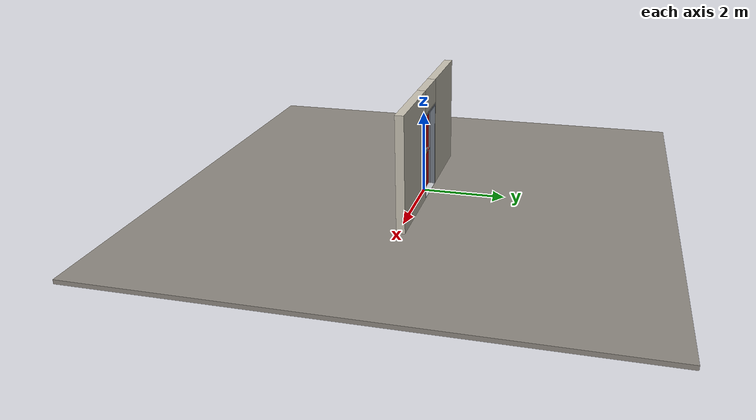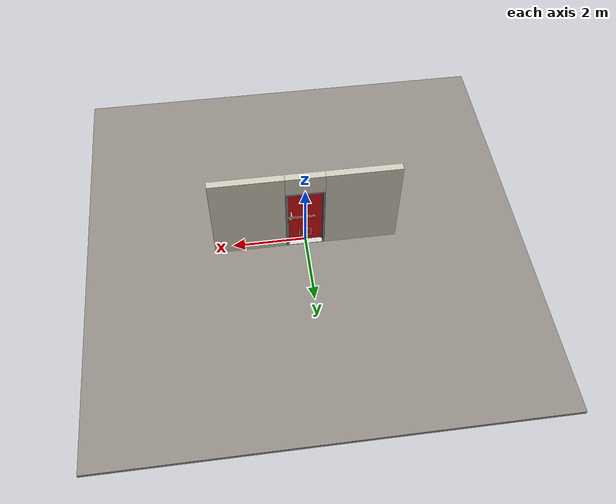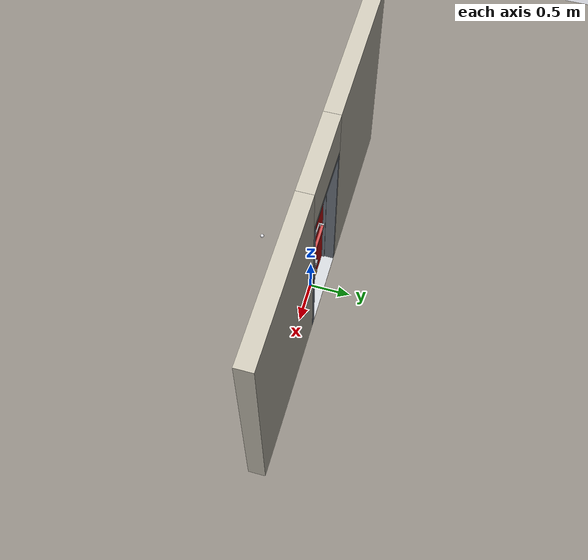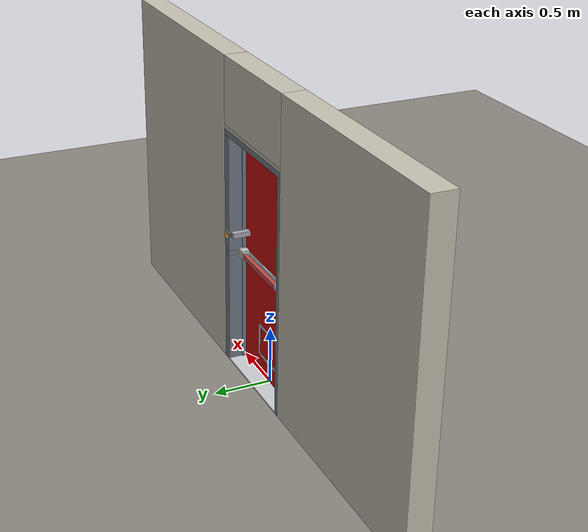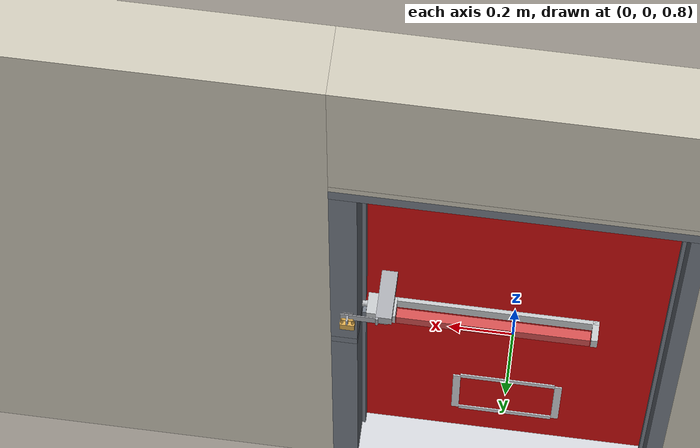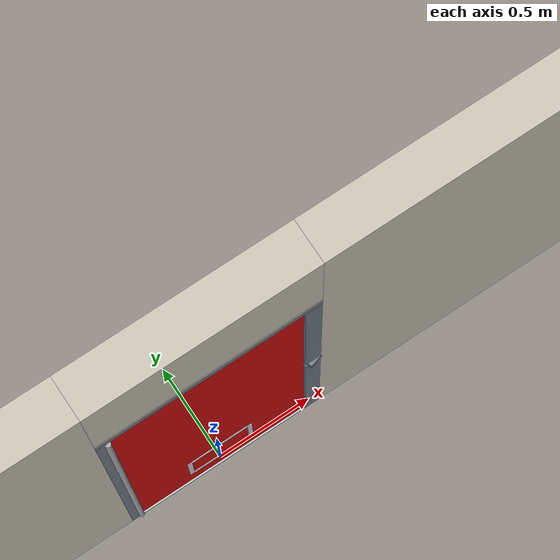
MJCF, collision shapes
<?xml version="1.0" ?>
<mujoco model="db0789_swing_single_full">
  <compiler angle="radian" meshdir="../../hardware" texturedir="../../textures" autolimits="true" inertiafromgeom="false"/>
  <option timestep="0.002" integrator="implicitfast" cone="elliptic" impratio="10" noslip_iterations="3">
    <flag multiccd="enable"/>
  </option>
  <size memory="16M"/>
  <default>
    <geom condim="4" solref="0.005 1" solimp="0.95 0.99 0.001"/>
    <joint solreflimit="0.005 1" solimplimit="0.95 0.99 0.001"/>
    <tendon solreflimit="0.005 1"/>
    <equality solref="0.002 1"/>
  </default>
  <visual>
    <headlight ambient="0.4 0.4 0.4" diffuse="0.7 0.7 0.7" specular="0.2 0.2 0.2"/>
    <quality shadowsize="4096"/>
    <map znear="0.01" zfar="60"/>
  </visual>
  <asset>
    <mesh name="touchbar_pad_2729a067b4" file="touchbar_pad_2729a067b4.obj"/>
    <material name="mat_floor" rgba="0.55 0.53 0.5 1" specular="0.2" shininess="0.15" reflectance="0"/>
    <material name="mat_wall" rgba="0.78 0.76 0.7 1" specular="0.2" shininess="0.1" reflectance="0"/>
    <material name="mat_leaf" rgba="0.8 0.05 0.05 1" specular="0.23" shininess="0.52" reflectance="0.02"/>
    <material name="mat_leaf_louver" rgba="0.68 0.043 0.043 1" specular="0.2" shininess="0.4" reflectance="0"/>
    <material name="mat_hinge" rgba="0.65 0.66 0.68 1" specular="0.74" shininess="0.5" reflectance="0.36"/>
    <material name="mat_op_stainless" rgba="0.75 0.76 0.77 1" specular="0.8" shininess="0.65" reflectance="0.4"/>
    <material name="mat_bolt" rgba="0.75 0.76 0.77 1" specular="0.8" shininess="0.65" reflectance="0.4"/>
    <material name="mat_op_steel_galvanized" rgba="0.65 0.66 0.68 1" specular="0.74" shininess="0.5" reflectance="0.36"/>
    <material name="mat_padlock" rgba="0.85 0.66 0.3 1" specular="0.8" shininess="0.75" reflectance="0.4"/>
    <material name="mat_frame" rgba="0.45 0.48 0.52 1" specular="0.32" shininess="0.6" reflectance="0.08"/>
    <material name="mat_seal" rgba="0.1 0.1 0.1 1" specular="0.2" shininess="0.1" reflectance="0"/>
    <material name="mat_threshold" rgba="0.8 0.81 0.83 1" specular="0.8" shininess="0.6" reflectance="0.4"/>
    <material name="mat_vent" rgba="0.8 0.81 0.83 1" specular="0.8" shininess="0.6" reflectance="0.4"/>
    <material name="mat_stop" rgba="0.9 0.9 0.92 1" specular="0.8" shininess="0.9" reflectance="0.4"/>
    <texture name="skybox" type="skybox" builtin="gradient" rgb1="0.6 0.7 0.85" rgb2="0.9 0.92 0.95" width="256" height="256"/>
  </asset>
  <worldbody>
    <light name="sun" pos="1.5 -2.5 4" dir="-0.3 0.5 -0.8" directional="true" diffuse="0.8 0.8 0.8" specular="0.3 0.3 0.3" castshadow="true"/>
    <light name="fill" pos="-1.5 2.5 3" dir="0.3 -0.5 -0.7" directional="true" diffuse="0.35 0.35 0.4" castshadow="false"/>
    <camera name="robot_view" pos="0 -2.471187 1.734312" xyaxes="1 0 0 0 0.26963 0.962964" fovy="52"/>
    <camera name="far_view" pos="0 2.613187 1.734312" xyaxes="-1 0 0 0 -0.26963 0.962964" fovy="52"/>
    <camera name="iso" pos="1.932062 -2.064437 2.141063" xyaxes="0.741536 0.670913 0 -0.242917 0.268487 0.932151" fovy="46"/>
    <camera name="detail_handle" pos="0.6705 -0.615 1.496" xyaxes="0.97561 0.219512 0 -0.070934 0.315262 0.94635" fovy="38"/>
    <geom name="floor" type="box" size="6 6 0.05" pos="0 0 -0.05" material="mat_floor" group="0" contype="1" conaffinity="1" friction="0.8 0.005 0.0001" density="2400"/>
    <geom name="wall_left" type="box" size="0.99475 0.1 1.35" pos="-1.50525 0.071 1.35" material="mat_wall" group="0" contype="1" conaffinity="1" friction="0.6 0.005 0.0001" density="800"/>
    <geom name="wall_right" type="box" size="0.97975 0.1 1.35" pos="1.52025 0.071 1.35" material="mat_wall" group="0" contype="1" conaffinity="1" friction="0.6 0.005 0.0001" density="800"/>
    <geom name="wall_header" type="box" size="0.5255 0.1 0.2875" pos="0.015 0.071 2.4125" material="mat_wall" group="0" contype="1" conaffinity="1" friction="0.6 0.005 0.0001" density="800"/>
    <geom name="leaf_staple_leg_n" type="box" size="0.003 0.0025 0.013" pos="0.4885 0.184 1.2285" quat="0.707107 -0.707107 0 0" material="mat_op_steel_galvanized" group="0" contype="1" conaffinity="1" friction="0.6 0.005 0.0001" density="7800"/>
    <geom name="leaf_staple_leg_p" type="box" size="0.003 0.0025 0.013" pos="0.4885 0.184 1.2035" quat="0.707107 -0.707107 0 0" material="mat_op_steel_galvanized" group="0" contype="1" conaffinity="1" friction="0.6 0.005 0.0001" density="7800"/>
    <geom name="leaf_staple_bridge" type="box" size="0.003 0.015 0.0025" pos="0.4885 0.1945 1.216" quat="0.707107 -0.707107 0 0" material="mat_op_steel_galvanized" group="0" contype="1" conaffinity="1" friction="0.6 0.005 0.0001" density="7800"/>
    <geom name="leaf_staple_base" type="box" size="0.016 0.021 0.001" pos="0.4885 0.172 1.216" quat="0.707107 -0.707107 0 0" material="mat_op_steel_galvanized" group="1" contype="0" conaffinity="0" density="7800"/>
    <geom name="leaf_padlock_shackle" type="capsule" size="0.004 0.016" pos="0.4885 0.186 1.216" quat="0.707107 0 0.707107 0" material="mat_padlock" group="1" contype="0" conaffinity="0" density="7850"/>
    <geom name="leaf_padlock_leg_a" type="capsule" size="0.004 0.012" pos="0.4725 0.186 1.204" quat="0 1 0 0" material="mat_padlock" group="1" contype="0" conaffinity="0" density="7850"/>
    <geom name="leaf_padlock_leg_b" type="capsule" size="0.004 0.012" pos="0.5045 0.186 1.204" quat="0 1 0 0" material="mat_padlock" group="1" contype="0" conaffinity="0" density="7850"/>
    <geom name="leaf_padlock_body" type="box" size="0.022 0.018 0.008" pos="0.4885 0.186 1.174" quat="0.707107 -0.707107 0 0" material="mat_padlock" group="0" contype="1" conaffinity="1" friction="0.6 0.005 0.0001" density="7850"/>
    <geom name="jamb_hinge" type="box" size="0.025 0.1 1.0225" pos="-0.4855 0.071 1.0225" material="mat_frame" group="0" contype="1" conaffinity="1" friction="0.6 0.005 0.0001" density="300"/>
    <geom name="strike_1016_wall_n" type="box" size="0.04 0.058 0.02" pos="0.5005 0.113 1.016" material="mat_frame" group="0" contype="1" conaffinity="1" friction="0.6 0.005 0.0001" density="300"/>
    <geom name="strike_1016_wall_p" type="box" size="0.04 0.008 0.02" pos="0.5005 0.025 1.016" material="mat_frame" group="0" contype="1" conaffinity="1" friction="0.6 0.005 0.0001" density="300"/>
    <geom name="strike_1016_ramp" type="box" size="0.04 0.034482 0.02" pos="0.508781 -0.0044 1.016" quat="0.989198 0 0 0.146587" material="mat_frame" group="0" contype="1" conaffinity="1" friction="0.12 0.005 0.0001" density="300"/>
    <geom name="strike_1016_back" type="box" size="0.0285 0.011 0.02" pos="0.512 0.044 1.016" material="mat_frame" group="0" contype="1" conaffinity="1" friction="0.6 0.005 0.0001" density="300"/>
    <geom name="jamb_strike_0" type="box" size="0.04 0.1 0.498" pos="0.5005 0.071 0.498" material="mat_frame" group="0" contype="1" conaffinity="1" friction="0.6 0.005 0.0001" density="300"/>
    <geom name="jamb_strike_1" type="box" size="0.04 0.1 0.5045" pos="0.5005 0.071 1.5405" material="mat_frame" group="0" contype="1" conaffinity="1" friction="0.6 0.005 0.0001" density="300"/>
    <geom name="jamb_head" type="box" size="0.5255 0.1 0.025" pos="0.015 0.071 2.07" material="mat_frame" group="0" contype="1" conaffinity="1" friction="0.6 0.005 0.0001" density="300"/>
    <geom name="head_stud" type="box" size="0.5255 0.1 0.015" pos="0.015 0.071 2.11" material="mat_wall" group="0" contype="1" conaffinity="1" friction="0.6 0.005 0.0001" density="500"/>
    <geom name="stop_hinge" type="box" size="0.0055 0.016 1.0225" pos="-0.455 0.0385 1.0225" material="mat_frame" group="0" contype="1" conaffinity="1" friction="0.6 0.005 0.0001" density="300"/>
    <geom name="stop_strike" type="box" size="0.0055 0.016 0.48425" pos="0.455 0.0385 0.48425" material="mat_frame" group="0" contype="1" conaffinity="1" friction="0.6 0.005 0.0001" density="300"/>
    <geom name="stop_strike_1" type="box" size="0.0055 0.016 0.49075" pos="0.455 0.0385 1.55425" material="mat_frame" group="0" contype="1" conaffinity="1" friction="0.6 0.005 0.0001" density="300"/>
    <geom name="stop_head" type="box" size="0.4605 0.016 0.0055" pos="0 0.0385 2.0395" material="mat_frame" group="0" contype="1" conaffinity="1" friction="0.6 0.005 0.0001" density="300"/>
    <geom name="seal_hinge" type="box" size="0.004 0.002 1.0225" pos="-0.4575 0.024 1.0225" material="mat_seal" group="1" contype="0" conaffinity="0" density="1100"/>
    <geom name="seal_strike" type="box" size="0.004 0.002 0.48425" pos="0.4575 0.024 0.48425" material="mat_seal" group="1" contype="0" conaffinity="0" density="1100"/>
    <geom name="seal_strike_1" type="box" size="0.004 0.002 0.49075" pos="0.4575 0.024 1.55425" material="mat_seal" group="1" contype="0" conaffinity="0" density="1100"/>
    <geom name="seal_head" type="box" size="0.4405 0.002 0.008" pos="0 0.024 2.033" material="mat_seal" group="1" contype="0" conaffinity="0" density="1100"/>
    <geom name="threshold" type="box" size="0.5105 0.1 0.0065" pos="0 0.071 0.0065" material="mat_threshold" group="0" contype="1" conaffinity="1" friction="0.5 0.005 0.0001" density="2700"/>
    <geom name="floor_stop_dome" type="sphere" size="0.025" pos="-0.545135 -0.801201 0" material="mat_stop" group="0" contype="1" conaffinity="1" friction="0.6 0.005 0.0001" density="7000"/>
    <site name="approach_point" pos="0 -1.5 0" quat="1 0 0 0" size="0.05" rgba="0.2 0.9 0.2 0.5" group="4"/>
    <site name="goal_point" pos="0 1.5 0" quat="1 0 0 0" size="0.05" rgba="0.2 0.9 0.2 0.5" group="4"/>
    <site name="door_plane_center" pos="0 0 1.0225" quat="1 0 0 0" size="0.02" rgba="0.2 0.9 0.2 0.5" group="4"/>
    <body name="leaf" pos="-0.4605 0 0">
      <inertial pos="0.460372 0.003904 1.024502" mass="62.592046" quat="0.495464 0.509657 -0.489204 0.505415" diaginertia="4.997626913 20.032649231 24.953960184"/>
      <joint name="leaf_hinge" type="hinge" axis="0 0 -1" pos="0.003 -0.029 0" limited="true" range="0 0.0015" solreflimit="0.02 1" damping="0.30611" frictionloss="3.282966" armature="0.02"/>
      <geom name="leaf_slab" type="box" size="0.457 0.022 1.012" pos="0.46 0 1.029" material="mat_leaf" group="0" contype="1" conaffinity="1" friction="0.4 0.005 0.0001" density="1"/>
      <geom name="leaf_louver_0" type="box" size="0.2285 0.002 0.02625" pos="0.46 0 0.292" quat="0.953717 0.300706 0 0" material="mat_leaf_louver" group="1" contype="0" conaffinity="0" density="1"/>
      <geom name="leaf_louver_1" type="box" size="0.2285 0.002 0.02625" pos="0.46 0 0.342" quat="0.953717 0.300706 0 0" material="mat_leaf_louver" group="1" contype="0" conaffinity="0" density="1"/>
      <geom name="leaf_louver_2" type="box" size="0.2285 0.002 0.02625" pos="0.46 0 0.392" quat="0.953717 0.300706 0 0" material="mat_leaf_louver" group="1" contype="0" conaffinity="0" density="1"/>
      <geom name="leaf_louver_3" type="box" size="0.2285 0.002 0.02625" pos="0.46 0 0.442" quat="0.953717 0.300706 0 0" material="mat_leaf_louver" group="1" contype="0" conaffinity="0" density="1"/>
      <geom name="leaf_louver_4" type="box" size="0.2285 0.002 0.02625" pos="0.46 0 0.492" quat="0.953717 0.300706 0 0" material="mat_leaf_louver" group="1" contype="0" conaffinity="0" density="1"/>
      <geom name="leaf_louver_5" type="box" size="0.2285 0.002 0.02625" pos="0.46 0 0.542" quat="0.953717 0.300706 0 0" material="mat_leaf_louver" group="1" contype="0" conaffinity="0" density="1"/>
      <geom name="leaf_louver_6" type="box" size="0.2285 0.002 0.02625" pos="0.46 0 0.592" quat="0.953717 0.300706 0 0" material="mat_leaf_louver" group="1" contype="0" conaffinity="0" density="1"/>
      <geom name="leaf_louver_7" type="box" size="0.2285 0.002 0.02625" pos="0.46 0 0.642" quat="0.953717 0.300706 0 0" material="mat_leaf_louver" group="1" contype="0" conaffinity="0" density="1"/>
      <geom name="leaf_louver_8" type="box" size="0.2285 0.002 0.02625" pos="0.46 0 0.692" quat="0.953717 0.300706 0 0" material="mat_leaf_louver" group="1" contype="0" conaffinity="0" density="1"/>
      <geom name="hinge_continuous" type="cylinder" size="0.0136 1.002" pos="0.003 -0.029 1.029" material="mat_hinge" group="1" contype="0" conaffinity="0" density="2700"/>
      <geom name="leaf_exit_device_rail" type="box" size="0.31705 0.006 0.025" pos="0.51995 0.028 1.016" material="mat_op_stainless" group="0" contype="1" conaffinity="1" friction="0.6 0.005 0.0001" density="3000"/>
      <geom name="leaf_exit_device_rail_end_n" type="box" size="0.01 0.0325 0.025" pos="0.2129 0.0545 1.016" material="mat_op_stainless" group="0" contype="1" conaffinity="1" friction="0.6 0.005 0.0001" density="3000"/>
      <geom name="leaf_exit_device_rail_end_p" type="box" size="0.01 0.0325 0.025" pos="0.827 0.0545 1.016" material="mat_op_stainless" group="0" contype="1" conaffinity="1" friction="0.6 0.005 0.0001" density="3000"/>
      <geom name="leaf_exit_device_case" type="box" size="0.034 0.034125 0.0375" pos="0.871 0.056125 1.016" material="mat_op_stainless" group="0" contype="1" conaffinity="1" friction="0.6 0.005 0.0001" density="3000"/>
      <geom name="leaf_hasp_plate" type="box" size="0.024 0.0215 0.0765" pos="0.842 0.0985 1.216" quat="0.707107 -0.707107 0 0" material="mat_op_steel_galvanized" group="1" contype="0" conaffinity="0" density="7800"/>
      <geom name="louver_vent_stile_n_l" type="box" size="0.012 0.002 0.137" pos="0.298 -0.024 0.322" material="mat_vent" group="2" contype="0" conaffinity="0" density="2700"/>
      <geom name="louver_vent_stile_n_r" type="box" size="0.012 0.002 0.137" pos="0.622 -0.024 0.322" material="mat_vent" group="2" contype="0" conaffinity="0" density="2700"/>
      <geom name="louver_vent_rail_n_b" type="box" size="0.15 0.002 0.012" pos="0.46 -0.024 0.185" material="mat_vent" group="2" contype="0" conaffinity="0" density="2700"/>
      <geom name="louver_vent_rail_n_t" type="box" size="0.15 0.002 0.012" pos="0.46 -0.024 0.459" material="mat_vent" group="2" contype="0" conaffinity="0" density="2700"/>
      <geom name="louver_vent_stile_p_l" type="box" size="0.012 0.002 0.137" pos="0.298 0.024 0.322" material="mat_vent" group="2" contype="0" conaffinity="0" density="2700"/>
      <geom name="louver_vent_stile_p_r" type="box" size="0.012 0.002 0.137" pos="0.622 0.024 0.322" material="mat_vent" group="2" contype="0" conaffinity="0" density="2700"/>
      <geom name="louver_vent_rail_p_b" type="box" size="0.15 0.002 0.012" pos="0.46 0.024 0.185" material="mat_vent" group="2" contype="0" conaffinity="0" density="2700"/>
      <geom name="louver_vent_rail_p_t" type="box" size="0.15 0.002 0.012" pos="0.46 0.024 0.459" material="mat_vent" group="2" contype="0" conaffinity="0" density="2700"/>
      <geom name="louver_vent_slat_0" type="box" size="0.15 0.0015 0.015" pos="0.46 0 0.217833" quat="0.965926 -0.258819 0 0" material="mat_vent" group="2" contype="0" conaffinity="0" density="2700"/>
      <geom name="louver_vent_slat_1" type="box" size="0.15 0.0015 0.015" pos="0.46 0 0.2595" quat="0.965926 -0.258819 0 0" material="mat_vent" group="2" contype="0" conaffinity="0" density="2700"/>
      <geom name="louver_vent_slat_2" type="box" size="0.15 0.0015 0.015" pos="0.46 0 0.301167" quat="0.965926 -0.258819 0 0" material="mat_vent" group="2" contype="0" conaffinity="0" density="2700"/>
      <geom name="louver_vent_slat_3" type="box" size="0.15 0.0015 0.015" pos="0.46 0 0.342833" quat="0.965926 -0.258819 0 0" material="mat_vent" group="2" contype="0" conaffinity="0" density="2700"/>
      <geom name="louver_vent_slat_4" type="box" size="0.15 0.0015 0.015" pos="0.46 0 0.3845" quat="0.965926 -0.258819 0 0" material="mat_vent" group="2" contype="0" conaffinity="0" density="2700"/>
      <geom name="louver_vent_slat_5" type="box" size="0.15 0.0015 0.015" pos="0.46 0 0.426167" quat="0.965926 -0.258819 0 0" material="mat_vent" group="2" contype="0" conaffinity="0" density="2700"/>
      <site name="leaf_edge_mid" pos="0.917 0 1.012" quat="1 0 0 0" size="0.02" rgba="0.2 0.9 0.2 0.5" group="4"/>
      <body name="leaf_exit_device" pos="0.51995 0.022 1.016">
        <inertial pos="0 0.05 0" mass="4.76361" quat="0 0 0.707107 0.707107" diaginertia="0.00116113 0.137653089 0.138099678"/>
        <joint name="leaf_exit_device_slide" type="slide" axis="0 -1 0" limited="true" range="0 0.016" damping="153.575154" frictionloss="0.5" stiffness="1200" springref="-0.015" armature="0.15"/>
        <geom name="leaf_exit_device_pad" type="mesh" mesh="touchbar_pad_2729a067b4" pos="0 0 0" quat="-0.707107 0.707107 0 0" material="mat_op_stainless" group="1" contype="0" conaffinity="0" density="3000"/>
        <geom name="leaf_exit_device_pad_col" type="box" size="0.29405 0.015 0.0225" pos="0 0.05 0" material="mat_op_stainless" group="3" contype="1" conaffinity="1" rgba="0.8 0.3 0.3 0.25" friction="0.8 0.01 0.0001" density="3000"/>
        <site name="leaf_exit_device_push" pos="0 0.065 0" quat="1 0 0 0" size="0.015" rgba="0.2 0.9 0.2 0.5" group="4"/>
      </body>
      <body name="leaf_latch_bolt" pos="0.917 0.044 1.016">
        <inertial pos="-0.0055 0 0" mass="0.102826" quat="0.92388 -0.382683 0 0" diaginertia="0.000004365 0.000018287 0.000018287"/>
        <joint name="leaf_latch_bolt_slide" type="slide" axis="-1 0 0" limited="true" range="0 0.019" damping="2" frictionloss="0.3" stiffness="800" springref="-0.01" armature="0.1"/>
        <geom name="leaf_latch_bolt_capsule" type="capsule" size="0.0095 0.015" pos="-0.0055 0 0" quat="0.707107 0 0.707107 0" material="mat_bolt" group="0" contype="1" conaffinity="1" friction="0.2 0.005 0.0001" density="8500"/>
      </body>
      <body name="leaf_hasp" pos="0.862 0.175 1.216">
        <inertial pos="0.043932 0.001985 0" mass="0.110745" quat="0.00597 0.00597 0.707082 0.707082" diaginertia="0.000012666 0.000140194 0.000152371"/>
        <joint name="leaf_hasp_hinge" type="hinge" axis="0 0 1" limited="true" range="0 0.0015" damping="0.02" frictionloss="0.05" armature="0.005"/>
        <geom name="leaf_hasp_strap" type="box" size="0.0545 0.0175 0.0015" pos="0.0545 0.0015 0" quat="0.707107 -0.707107 0 0" material="mat_op_steel_galvanized" group="0" contype="1" conaffinity="1" friction="0.6 0.005 0.0001" density="7800"/>
        <geom name="leaf_hasp_knuckle" type="cylinder" size="0.0045 0.0215" pos="0 0.004 0" material="mat_op_steel_galvanized" group="1" contype="0" conaffinity="0" density="7850"/>
        <site name="leaf_hasp_grip" pos="0.089 0.01 0" quat="1 0 0 0" size="0.01" rgba="0.2 0.9 0.2 0.5" group="4"/>
      </body>
    </body>
  </worldbody>
  <tendon>
    <fixed name="leaf_latch_bolt_coupling" limited="true" range="0 10">
      <joint joint="leaf_latch_bolt_slide" coef="1"/>
      <joint joint="leaf_exit_device_slide" coef="-1.357143"/>
    </fixed>
  </tendon>
  <sensor>
    <jointpos name="leaf_hinge_pos" joint="leaf_hinge"/>
    <jointvel name="leaf_hinge_vel" joint="leaf_hinge"/>
    <jointpos name="leaf_exit_device_slide_pos" joint="leaf_exit_device_slide"/>
    <jointvel name="leaf_exit_device_slide_vel" joint="leaf_exit_device_slide"/>
    <jointpos name="leaf_latch_bolt_slide_pos" joint="leaf_latch_bolt_slide"/>
    <jointvel name="leaf_latch_bolt_slide_vel" joint="leaf_latch_bolt_slide"/>
    <jointpos name="leaf_hasp_hinge_pos" joint="leaf_hasp_hinge"/>
    <jointvel name="leaf_hasp_hinge_vel" joint="leaf_hasp_hinge"/>
  </sensor>
</mujoco>
